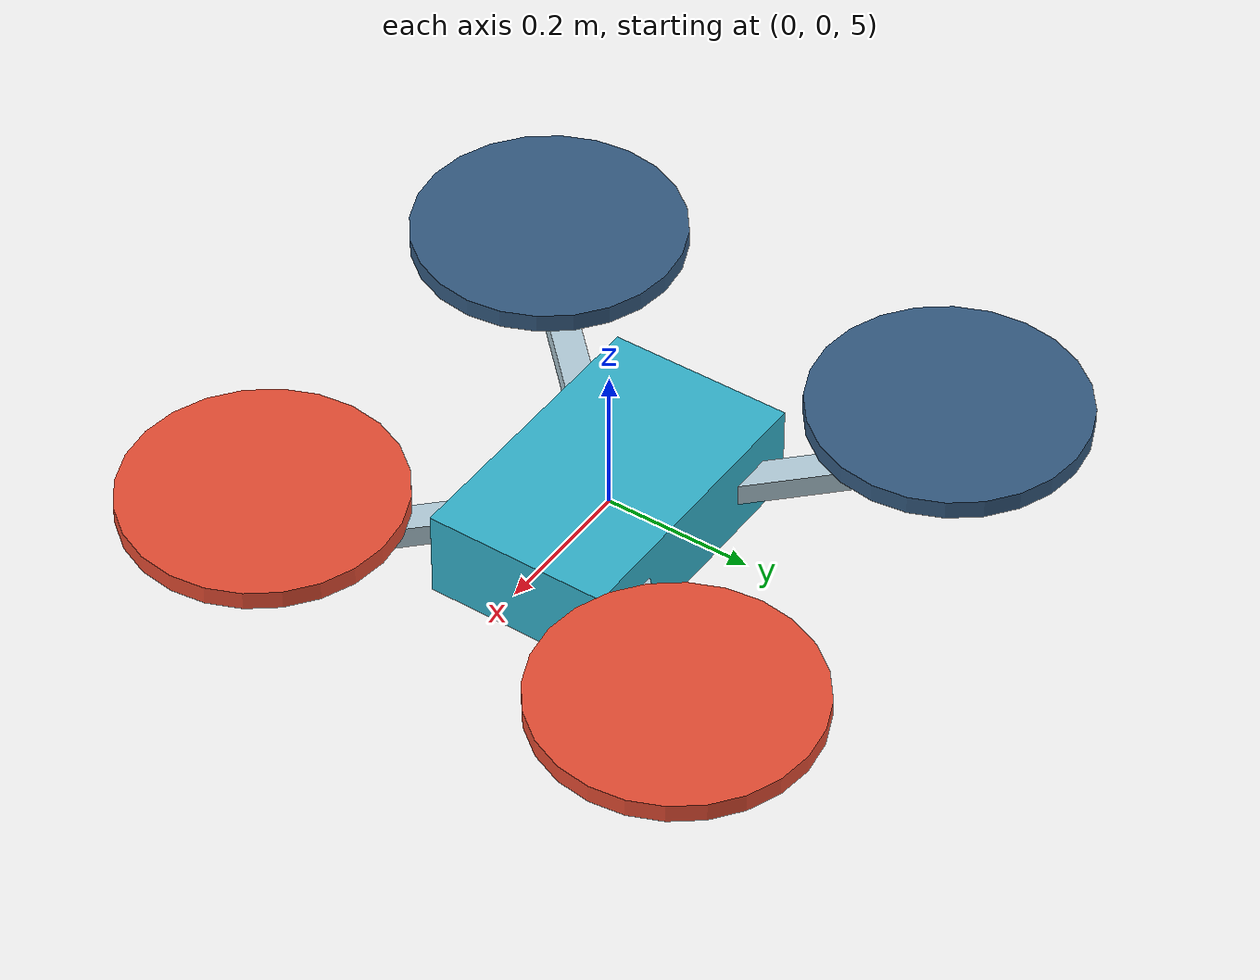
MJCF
<mujoco model="example_drone">
<compiler angle="radian" eulerseq="XYZ" inertiafromgeom="false"/>
<asset><mesh name="body" file="body.obj" scale=".4 .25 .12"/></asset>
<worldbody><body name="frame" pos="0 0 5"><freejoint/>
<inertial pos="0 0 0" mass="1" diaginertia=".02 .02 .04"/>
<geom name="body" type="mesh" mesh="body" pos="0 0 0" euler="0 0 0" rgba="0.2 0.7 0.8 1" contype="0" conaffinity="0"/>
<geom name="arm_a" type="box" size=".45 .02 .015" pos="0 0 0" euler="0 0 0.7853981633974483" rgba="0.7 0.8 0.85 1" contype="0" conaffinity="0"/>
<geom name="arm_b" type="box" size=".45 .02 .015" pos="0 0 0" euler="0 0 -0.7853981633974483" rgba="0.7 0.8 0.85 1" contype="0" conaffinity="0"/>
<geom name="rotor_0" type="cylinder" size=".18 .0125" pos="0.3 0.3 .08" euler="0 0 0" rgba="0.9 0.3 0.2 1" contype="0" conaffinity="0"/>
<geom name="rotor_1" type="cylinder" size=".18 .0125" pos="-0.3 0.3 .08" euler="0 0 0" rgba="0.2 0.35 0.5 1" contype="0" conaffinity="0"/>
<geom name="rotor_2" type="cylinder" size=".18 .0125" pos="-0.3 -0.3 .08" euler="0 0 0" rgba="0.2 0.35 0.5 1" contype="0" conaffinity="0"/>
<geom name="rotor_3" type="cylinder" size=".18 .0125" pos="0.3 -0.3 .08" euler="0 0 0" rgba="0.9 0.3 0.2 1" contype="0" conaffinity="0"/>
</body></worldbody></mujoco>
